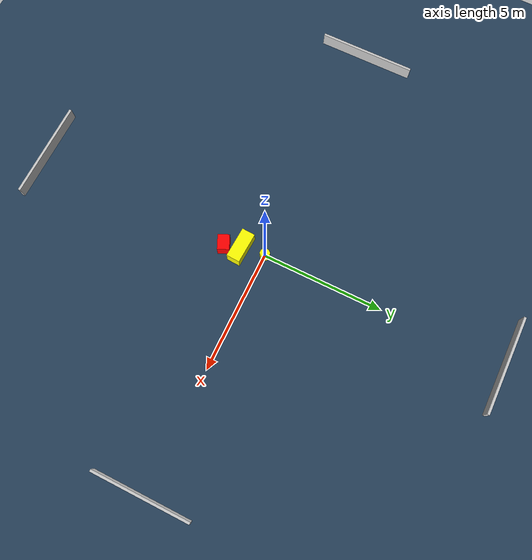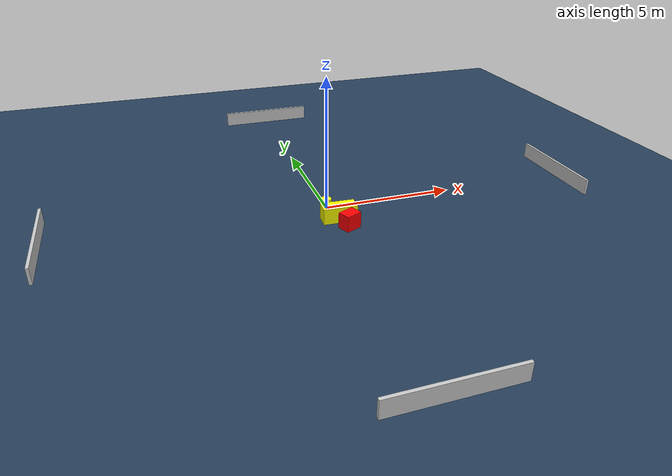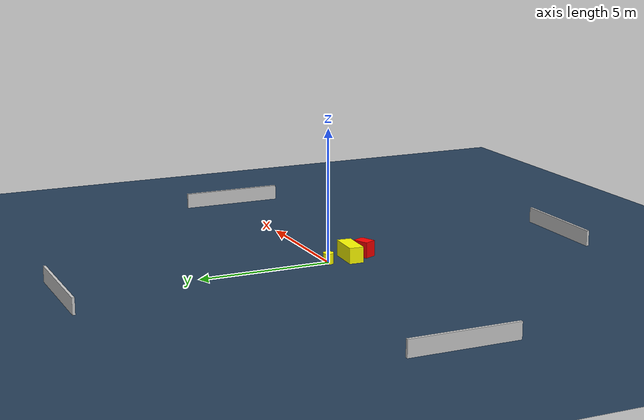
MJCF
<?xml version="1.0" ?>
<mujoco model="generated_environment">
  <option timestep="0.01" integrator="RK4" cone="elliptic"/>
  <default>
    <geom density="1"/>
  </default>
  <asset>
    <texture builtin="gradient" height="3072" name="skybox" rgb1="0.3 0.5 0.7" rgb2="0 0 0" type="skybox" width="512"/>
    <texture builtin="checker" height="300" name="groundplane" rgb1="0.2 0.3 0.4" rgb2="0.1 0.2 0.3" type="2d" width="300"/>
    <material name="groundplane" reflectance="0.2" texrepeat="5 5" texture="groundplane"/>
  </asset>
  <worldbody>
    <light dir="0 0 -1" directional="true" pos="0 0 1.5"/>
    <geom condim="3" friction="0.5 0.005 0.001" material="groundplane" name="floor" pos="0 0 0" size="0 0 0.05" type="plane"/>
    <body name="walls">
      <geom name="wall_1" condim="4" pos="-10.0 0.0 0.3" rgba="0.800000011920929 0.800000011920929 0.800000011920929 1.0" size="0.05 2.0 0.3" type="box"/>
      <geom name="wall_2" condim="4" pos="10.0 0.0 0.3" rgba="0.800000011920929 0.800000011920929 0.800000011920929 1.0" size="0.05 2.0 0.3" type="box"/>
      <geom name="wall_3" condim="4" pos="0.0 -10.0 0.3" rgba="0.800000011920929 0.800000011920929 0.800000011920929 1.0" size="2.0 0.05 0.3" type="box"/>
      <geom name="wall_4" condim="4" pos="0.0 10.0 0.3" rgba="0.800000011920929 0.800000011920929 0.800000011920929 1.0" size="2.0 0.05 0.3" type="box"/>
    </body>
    <body name="robot">
      <joint name="joint_x" type="slide" pos="0 0 0" axis="1 0 0"/>
      <joint name="joint_y" type="slide" pos="0 0 0" axis="0 1 0"/>
      <geom name="robot" type="cylinder" pos="0.0 0.0 0.2" size="0.2 0.2 0.0" mass="5.0" friction="1.0 0.005 0.0001" condim="4" rgba="1.0 1.0 0.0 1.0"/>
    </body>
    <body name="obstacle_1_movable">
      <geom name="obstacle_1_movable" condim="4" pos="0.16954229355734826 -0.9674902148651068 0.3" euler="0 0 177.05713310112841" friction="0.0 0.005 0.001" rgba="1.0 1.0 0.0 1.0" size="0.628545131303166 0.275380897389789 0.3" type="box" mass="0.1"/>
      <joint type="free"/>
    </body>
    <body name="obstacle_2_static">
      <geom name="obstacle_2_static" condim="4" pos="0.3516531307215622 -1.6367447578865595 0.3" euler="0 0 204.38861474098826" friction="0.0 0.005 0.001" rgba="1.0 0.0 0.0 1.0" size="0.309871205543442 0.24044319463651653 0.3" type="box"/>
    </body>
  </worldbody>
  <actuator>
    <motor name="actuator_x" joint="joint_x" gear="1" ctrlrange="-1 1"/>
    <motor name="actuator_y" joint="joint_y" gear="1" ctrlrange="-1 1"/>
  </actuator>
</mujoco>
